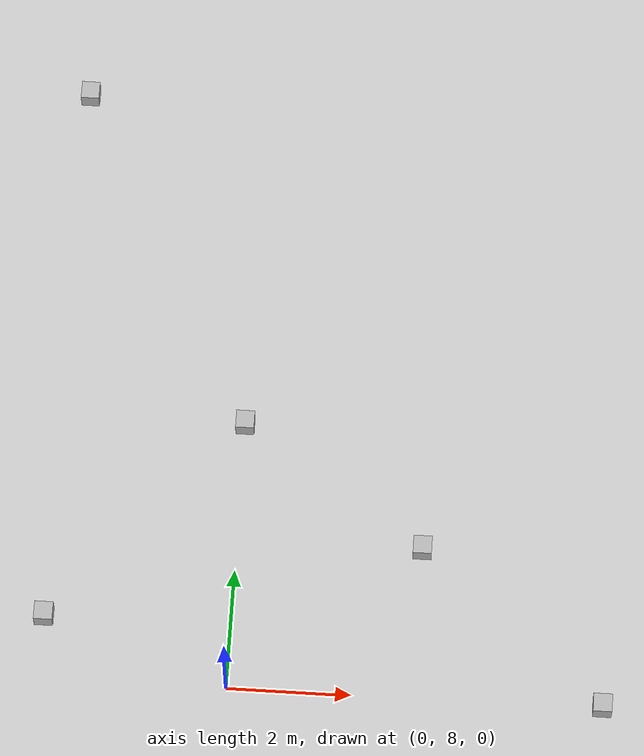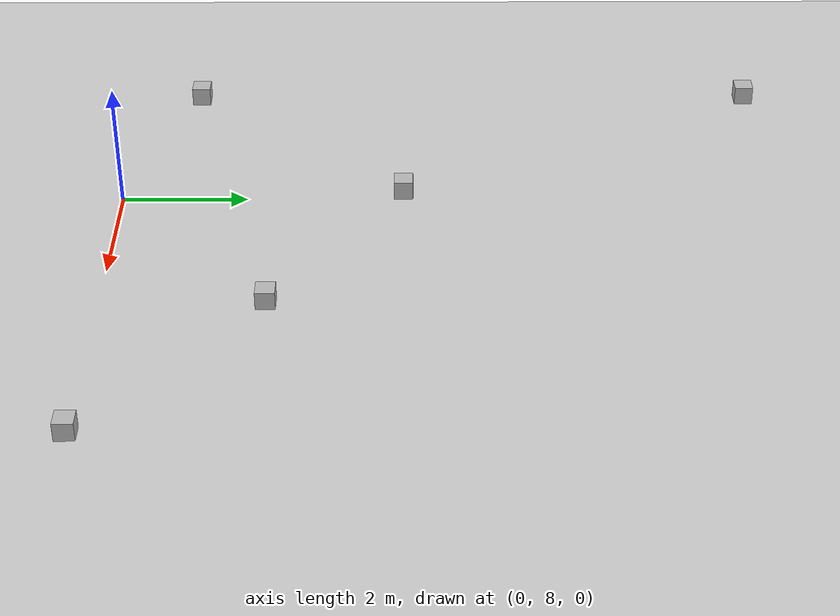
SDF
<sdf version="1.5">
 <world name="default">
  <include><uri>model://sun</uri></include>
  <include><uri>model://ground_plane</uri></include>
  <include><name>cube</name><uri>model://cube</uri><static>true</static></include>
  <physics name="default_physics" default="0" type="ode">
   <gravity>0 0 -9.8066</gravity>
   <ode>
    <solver>
     <type>quick</type>
     <iters>10</iters>
     <sor>1.3</sor>
     <use_dynamic_moi_rescaling>0</use_dynamic_moi_rescaling>
    </solver>
    <constraints>
     <cfm>0</cfm>
     <erp>0.2</erp>
     <contact_max_correcting_vel>100</contact_max_correcting_vel>
     <contact_surface_layer>0.001</contact_surface_layer>
    </constraints>
   </ode>
   <real_time_factor>1</real_time_factor>
   <magnetic_field>6.0e-6 2.3e-5 -4.2e-5</magnetic_field>
  </physics>
 </world>
</sdf>

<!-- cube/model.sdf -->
<sdf version="1.5">
    <model name="cube">
        <static>true</static>
        <link name="link">
            <collision name="collision1">
                <pose>0 12.5 0.1 0 0 0</pose>
                <geometry>
                    <mesh>
                        <uri>model://cube/meshes/cube.dae</uri>
                    </mesh>
                </geometry>
            </collision>
            <visual name="visual1">

              <pose>0 12.5 0.1 0 0 0</pose>
              <geometry>
              <mesh>
                 <uri>model://cube/meshes/cube.dae</uri>
              </mesh>
              </geometry>

              <material>
                  <script>
                      <uri>model://cube/materials/scripts</uri>
                      <uri>model://cube/materials/textures</uri>
                      <name>cubeMat/Diffuse</name>
                  </script>
              </material>
             </visual>

             <collision name="collision2">
                <pose>3 10.5 0.1 0 0 0</pose>
                <geometry>
                    <mesh>
                        <uri>model://cube/meshes/cube.dae</uri>
                    </mesh>
                </geometry>
            </collision>
            <visual name="visual2">

              <pose>3 10.5 0.1 0 0 0</pose>
              <geometry>
              <mesh>
                 <uri>model://cube/meshes/cube.dae</uri>
              </mesh>
              </geometry>

              <material>
                  <script>
                      <uri>model://cube/materials/scripts</uri>
                      <uri>model://cube/materials/textures</uri>
                      <name>cubeMat/Diffuse</name>
                  </script>
              </material>
             </visual>

             <collision name="collision3">
                <pose>-3 9 0.1 0 0 0</pose>
                <geometry>
                    <mesh>
                        <uri>model://cube/meshes/cube.dae</uri>
                    </mesh>
                </geometry>
            </collision>
            <visual name="visual3">

              <pose>-3 9 0.1 0 0 0</pose>
              <geometry>
              <mesh>
                 <uri>model://cube/meshes/cube.dae</uri>
              </mesh>
              </geometry>

              <material>
                  <script>
                      <uri>model://cube/materials/scripts</uri>
                      <uri>model://cube/materials/textures</uri>
                      <name>cubeMat/Diffuse</name>
                  </script>
              </material>
             </visual>

             <collision name="collision4">
                <pose>6 8 0.1 0 0 0</pose>
                <geometry>
                    <mesh>
                        <uri>model://cube/meshes/cube.dae</uri>
                    </mesh>
                </geometry>
            </collision>
            <visual name="visual4">

              <pose>6 8 0.1 0 0 0</pose>
              <geometry>
              <mesh>
                 <uri>model://cube/meshes/cube.dae</uri>
              </mesh>
              </geometry>

              <material>
                  <script>
                      <uri>model://cube/materials/scripts</uri>
                      <uri>model://cube/materials/textures</uri>
                      <name>cubeMat/Diffuse</name>
                  </script>
              </material>
             </visual>

             <collision name="collision5">
                <pose>-3 18.3 0.1 0 0 0</pose>
                <geometry>
                    <mesh>
                        <uri>model://cube/meshes/cube.dae</uri>
                    </mesh>
                </geometry>
            </collision>
            <visual name="visual5">

              <pose>-3 18.3 0.1 0 0 0</pose>
              <geometry>
              <mesh>
                 <uri>model://cube/meshes/cube.dae</uri>
              </mesh>
              </geometry>

              <material>
                  <script>
                      <uri>model://cube/materials/scripts</uri>
                      <uri>model://cube/materials/textures</uri>
                      <name>cubeMat/Diffuse</name>
                  </script>
              </material>
             </visual>
        </link>
    </model>
</sdf>
